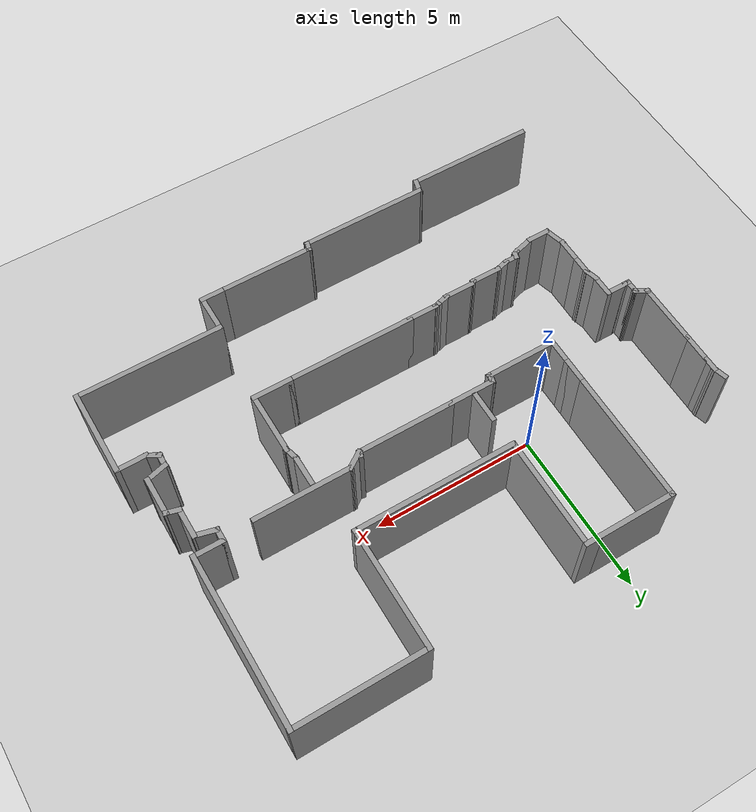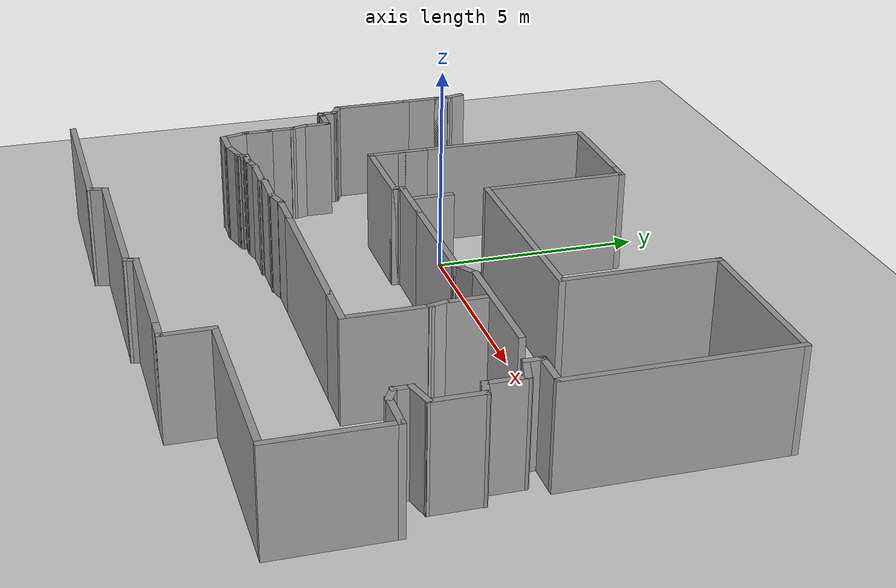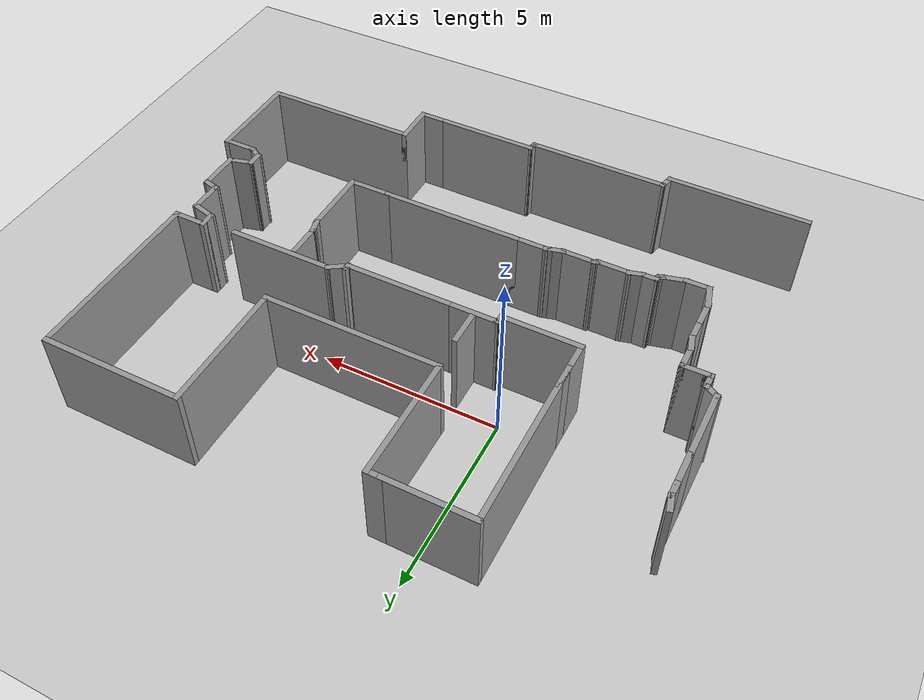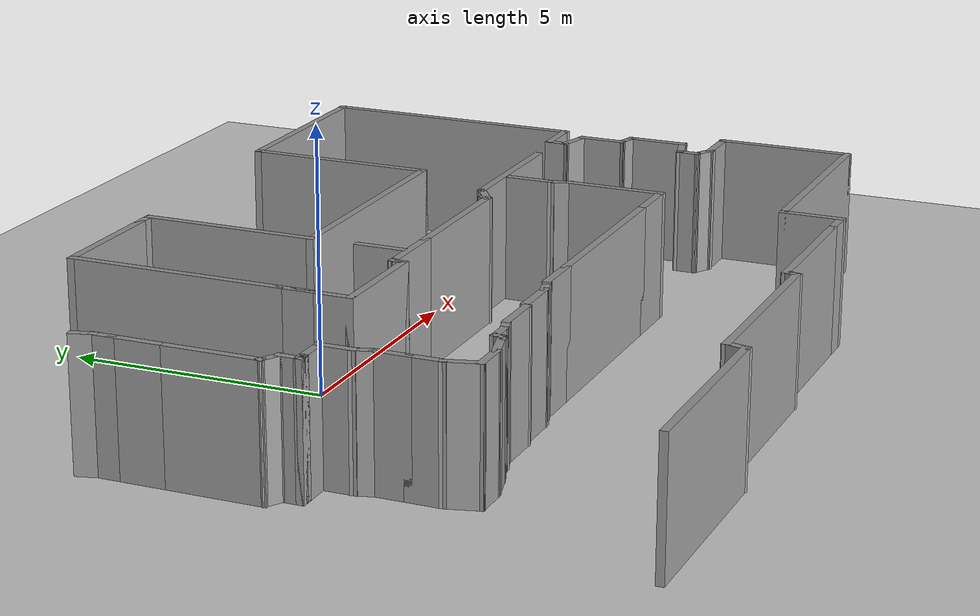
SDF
<sdf version="1.7">
 <world name="default">
  <model name="ground_plane">
   <static>1</static>
   <link name="link">
    <collision name="collision">
     <geometry><plane><normal>0 0 1</normal><size>100 100</size></plane></geometry>
     <surface>
      <contact><collide_bitmask>65535</collide_bitmask></contact>
      <friction><ode><mu>100</mu><mu2>50</mu2></ode></friction>
     </surface>
    </collision>
    <visual name="visual">
     <cast_shadows>0</cast_shadows>
     <geometry><plane><normal>0 0 1</normal><size>100 100</size></plane></geometry>
     <material>
      <script><uri>file://media/materials/scripts/gazebo.material</uri><name>Gazebo/Grey</name></script>
     </material>
    </visual>
   </link>
  </model>
  <model name="robovisor_env">
   <pose>-13 -0.201839 0 0 0 3.14</pose>
   <link name="Wall_0">
    <collision name="Wall_0_Collision">
     <geometry><box><size>1 0.15 2.5</size></box></geometry>
     <pose>0 0 1.25 0 -0 0</pose>
    </collision>
    <visual name="Wall_0_Visual">
     <pose>0 0 1.25 0 -0 0</pose>
     <geometry><box><size>1 0.15 2.5</size></box></geometry>
     <material>
      <script><uri>file://media/materials/scripts/gazebo.material</uri><name>Gazebo/Grey</name></script>
      <ambient>1 1 1 1</ambient>
     </material>
     <meta><layer>0</layer></meta>
    </visual>
    <pose>-14.2767 0.369884 0 0 -0 1.5708</pose>
   </link>
   <link name="Wall_101">
    <collision name="Wall_101_Collision">
     <geometry><box><size>2 0.15 2.5</size></box></geometry>
     <pose>0 0 1.25 0 -0 0</pose>
    </collision>
    <visual name="Wall_101_Visual">
     <pose>0 0 1.25 0 -0 0</pose>
     <geometry><box><size>2 0.15 2.5</size></box></geometry>
     <material>
      <script><uri>file://media/materials/scripts/gazebo.material</uri><name>Gazebo/Grey</name></script>
      <ambient>1 1 1 1</ambient>
     </material>
     <meta><layer>0</layer></meta>
    </visual>
    <pose>-8.20957 0.222487 0 0 -0 -1.5708</pose>
   </link>
   <link name="Wall_103">
    <collision name="Wall_103_Collision">
     <geometry><box><size>1 0.15 2.5</size></box></geometry>
     <pose>0 0 1.25 0 -0 0</pose>
    </collision>
    <visual name="Wall_103_Visual">
     <pose>0 0 1.25 0 -0 0</pose>
     <geometry><box><size>1 0.15 2.5</size></box></geometry>
     <material>
      <script><uri>file://media/materials/scripts/gazebo.material</uri><name>Gazebo/Grey</name></script>
      <ambient>1 1 1 1</ambient>
     </material>
     <meta><layer>0</layer></meta>
    </visual>
    <pose>-8.20957 -1.12751 0 0 -0 -1.5708</pose>
   </link>
   <link name="Wall_104">
    <collision name="Wall_104_Collision">
     <geometry><box><size>0.5 0.15 2.5</size></box></geometry>
     <pose>0 0 1.25 0 -0 0</pose>
    </collision>
    <visual name="Wall_104_Visual">
     <pose>0 0 1.25 0 -0 0</pose>
     <geometry><box><size>0.5 0.15 2.5</size></box></geometry>
     <material>
      <script><uri>file://media/materials/scripts/gazebo.material</uri><name>Gazebo/Grey</name></script>
      <ambient>1 1 1 1</ambient>
     </material>
     <meta><layer>0</layer></meta>
    </visual>
    <pose>-8.20957 -1.72751 0 0 -0 -1.5708</pose>
   </link>
   <link name="Wall_105">
    <collision name="Wall_105_Collision">
     <geometry><box><size>0.5 0.15 2.5</size></box></geometry>
     <pose>0 0 1.25 0 -0 0</pose>
    </collision>
    <visual name="Wall_105_Visual">
     <pose>0 0 1.25 0 -0 0</pose>
     <geometry><box><size>0.5 0.15 2.5</size></box></geometry>
     <material>
      <script><uri>file://media/materials/scripts/gazebo.material</uri><name>Gazebo/Grey</name></script>
      <ambient>1 1 1 1</ambient>
     </material>
     <meta><layer>0</layer></meta>
    </visual>
    <pose>-8.16427 -2.07155 0 0 -0 -1.309</pose>
   </link>
   <link name="Wall_11">
    <collision name="Wall_11_Collision">
     <geometry><box><size>4.25 0.15 2.5</size></box></geometry>
     <pose>0 0 1.25 0 -0 0</pose>
    </collision>
    <visual name="Wall_11_Visual">
     <pose>0 0 1.25 0 -0 0</pose>
     <geometry><box><size>4.25 0.15 2.5</size></box></geometry>
     <material>
      <script><uri>file://media/materials/scripts/gazebo.material</uri><name>Gazebo/Grey</name></script>
      <ambient>1 1 1 1</ambient>
     </material>
     <meta><layer>0</layer></meta>
    </visual>
    <pose>-11.5267 -2.27908 0 0 -0 -1.5708</pose>
   </link>
   <link name="Wall_12">
    <collision name="Wall_12_Collision">
     <geometry><box><size>2.5 0.15 2.5</size></box></geometry>
     <pose>0 0 1.25 0 -0 0</pose>
    </collision>
    <visual name="Wall_12_Visual">
     <pose>0 0 1.25 0 -0 0</pose>
     <geometry><box><size>2.5 0.15 2.5</size></box></geometry>
     <material>
      <script><uri>file://media/materials/scripts/gazebo.material</uri><name>Gazebo/Grey</name></script>
      <ambient>1 1 1 1</ambient>
     </material>
     <meta><layer>0</layer></meta>
    </visual>
    <pose>-12.7017 -4.32909 0 0 -0 3.14159</pose>
   </link>
   <link name="Wall_13">
    <collision name="Wall_13_Collision">
     <geometry><box><size>0.5 0.15 2.5</size></box></geometry>
     <pose>0 0 1.25 0 -0 0</pose>
    </collision>
    <visual name="Wall_13_Visual">
     <pose>0 0 1.25 0 -0 0</pose>
     <geometry><box><size>0.5 0.15 2.5</size></box></geometry>
     <material>
      <script><uri>file://media/materials/scripts/gazebo.material</uri><name>Gazebo/Grey</name></script>
      <ambient>1 1 1 1</ambient>
     </material>
     <meta><layer>0</layer></meta>
    </visual>
    <pose>-14.0517 -4.32909 0 0 -0 3.14159</pose>
   </link>
   <link name="Wall_14">
    <collision name="Wall_14_Collision">
     <geometry><box><size>3.5 0.15 2.5</size></box></geometry>
     <pose>0 0 1.25 0 -0 0</pose>
    </collision>
    <visual name="Wall_14_Visual">
     <pose>0 0 1.25 0 -0 0</pose>
     <geometry><box><size>3.5 0.15 2.5</size></box></geometry>
     <material>
      <script><uri>file://media/materials/scripts/gazebo.material</uri><name>Gazebo/Grey</name></script>
      <ambient>1 1 1 1</ambient>
     </material>
     <meta><layer>0</layer></meta>
    </visual>
    <pose>-14.2267 -2.65408 0 0 -0 1.5708</pose>
   </link>
   <link name="Wall_15">
    <collision name="Wall_15_Collision">
     <geometry><box><size>5 0.15 2.5</size></box></geometry>
     <pose>0 0 1.25 0 -0 0</pose>
    </collision>
    <visual name="Wall_15_Visual">
     <pose>0 0 1.25 0 -0 0</pose>
     <geometry><box><size>5 0.15 2.5</size></box></geometry>
     <material>
      <script><uri>file://media/materials/scripts/gazebo.material</uri><name>Gazebo/Grey</name></script>
      <ambient>1 1 1 1</ambient>
     </material>
     <meta><layer>0</layer></meta>
    </visual>
    <pose>-16.6517 -0.979085 0 0 -0 3.14159</pose>
   </link>
   <link name="Wall_16">
    <collision name="Wall_16_Collision">
     <geometry><box><size>3.75 0.15 2.5</size></box></geometry>
     <pose>0 0 1.25 0 -0 0</pose>
    </collision>
    <visual name="Wall_16_Visual">
     <pose>0 0 1.25 0 -0 0</pose>
     <geometry><box><size>3.75 0.15 2.5</size></box></geometry>
     <material>
      <script><uri>file://media/materials/scripts/gazebo.material</uri><name>Gazebo/Grey</name></script>
      <ambient>1 1 1 1</ambient>
     </material>
     <meta><layer>0</layer></meta>
    </visual>
    <pose>-19.0767 -2.77908 0 0 -0 -1.5708</pose>
   </link>
   <link name="Wall_17">
    <collision name="Wall_17_Collision">
     <geometry><box><size>4 0.15 2.5</size></box></geometry>
     <pose>0 0 1.25 0 -0 0</pose>
    </collision>
    <visual name="Wall_17_Visual">
     <pose>0 0 1.25 0 -0 0</pose>
     <geometry><box><size>4 0.15 2.5</size></box></geometry>
     <material>
      <script><uri>file://media/materials/scripts/gazebo.material</uri><name>Gazebo/Grey</name></script>
      <ambient>1 1 1 1</ambient>
     </material>
     <meta><layer>0</layer></meta>
    </visual>
    <pose>-21.0017 -4.57909 0 0 -0 3.14159</pose>
   </link>
   <link name="Wall_2">
    <collision name="Wall_2_Collision">
     <geometry><box><size>1.5 0.15 2.5</size></box></geometry>
     <pose>0 0 1.25 0 -0 0</pose>
    </collision>
    <visual name="Wall_2_Visual">
     <pose>0 0 1.25 0 -0 0</pose>
     <geometry><box><size>1.5 0.15 2.5</size></box></geometry>
     <material>
      <script><uri>file://media/materials/scripts/gazebo.material</uri><name>Gazebo/Grey</name></script>
      <ambient>1 1 1 1</ambient>
     </material>
     <meta><layer>0</layer></meta>
    </visual>
    <pose>-14.3276 0.924322 0 0 -0 0</pose>
   </link>
   <link name="Wall_20">
    <collision name="Wall_20_Collision">
     <geometry><box><size>5.25 0.15 2.5</size></box></geometry>
     <pose>0 0 1.25 0 -0 0</pose>
    </collision>
    <visual name="Wall_20_Visual">
     <pose>0 0 1.25 0 -0 0</pose>
     <geometry><box><size>5.25 0.15 2.5</size></box></geometry>
     <material>
      <script><uri>file://media/materials/scripts/gazebo.material</uri><name>Gazebo/Grey</name></script>
      <ambient>1 1 1 1</ambient>
     </material>
     <meta><layer>0</layer></meta>
    </visual>
    <pose>-22.9267 -2.02908 0 0 -0 1.5708</pose>
   </link>
   <link name="Wall_21">
    <collision name="Wall_21_Collision">
     <geometry><box><size>1 0.15 2.5</size></box></geometry>
     <pose>0 0 1.25 0 -0 0</pose>
    </collision>
    <visual name="Wall_21_Visual">
     <pose>0 0 1.25 0 -0 0</pose>
     <geometry><box><size>1 0.15 2.5</size></box></geometry>
     <material>
      <script><uri>file://media/materials/scripts/gazebo.material</uri><name>Gazebo/Grey</name></script>
      <ambient>1 1 1 1</ambient>
     </material>
     <meta><layer>0</layer></meta>
    </visual>
    <pose>-22.5017 0.520915 0 0 -0 0</pose>
   </link>
   <link name="Wall_24">
    <collision name="Wall_24_Collision">
     <geometry><box><size>3 0.15 2.5</size></box></geometry>
     <pose>0 0 1.25 0 -0 0</pose>
    </collision>
    <visual name="Wall_24_Visual">
     <pose>0 0 1.25 0 -0 0</pose>
     <geometry><box><size>3 0.15 2.5</size></box></geometry>
     <material>
      <script><uri>file://media/materials/scripts/gazebo.material</uri><name>Gazebo/Grey</name></script>
      <ambient>1 1 1 1</ambient>
     </material>
     <meta><layer>0</layer></meta>
    </visual>
    <pose>-16.4276 0.924322 0 0 -0 3.14159</pose>
   </link>
   <link name="Wall_25">
    <collision name="Wall_25_Collision">
     <geometry><box><size>0.15 0.15 2.5</size></box></geometry>
     <pose>0 0 1.25 0 -0 0</pose>
    </collision>
    <visual name="Wall_25_Visual">
     <pose>0 0 1.25 0 -0 0</pose>
     <geometry><box><size>0.15 0.15 2.5</size></box></geometry>
     <material>
      <script><uri>file://media/materials/scripts/gazebo.material</uri><name>Gazebo/Grey</name></script>
      <ambient>1 1 1 1</ambient>
     </material>
     <meta><layer>0</layer></meta>
    </visual>
    <pose>-17.8526 0.924322 0 0 -0 0</pose>
   </link>
   <link name="Wall_26">
    <collision name="Wall_26_Collision">
     <geometry><box><size>0.25 0.15 2.5</size></box></geometry>
     <pose>0 0 1.25 0 -0 0</pose>
    </collision>
    <visual name="Wall_26_Visual">
     <pose>0 0 1.25 0 -0 0</pose>
     <geometry><box><size>0.25 0.15 2.5</size></box></geometry>
     <material>
      <script><uri>file://media/materials/scripts/gazebo.material</uri><name>Gazebo/Grey</name></script>
      <ambient>1 1 1 1</ambient>
     </material>
     <meta><layer>0</layer></meta>
    </visual>
    <pose>-17.8655 0.876026 0 0 -0 -1.8326</pose>
   </link>
   <link name="Wall_28">
    <collision name="Wall_28_Collision">
     <geometry><box><size>3 0.15 2.5</size></box></geometry>
     <pose>0 0 1.25 0 -0 0</pose>
    </collision>
    <visual name="Wall_28_Visual">
     <pose>0 0 1.25 0 -0 0</pose>
     <geometry><box><size>3 0.15 2.5</size></box></geometry>
     <material>
      <script><uri>file://media/materials/scripts/gazebo.material</uri><name>Gazebo/Grey</name></script>
      <ambient>1 1 1 1</ambient>
     </material>
     <meta><layer>0</layer></meta>
    </visual>
    <pose>-19.7138 0.63442 0 0 -0 0</pose>
   </link>
   <link name="Wall_29">
    <collision name="Wall_29_Collision">
     <geometry><box><size>0.673777 0.15 2.5</size></box></geometry>
     <pose>0 0 1.25 0 -0 0</pose>
    </collision>
    <visual name="Wall_29_Visual">
     <pose>0 0 1.25 0 -0 0</pose>
     <geometry><box><size>0.673777 0.15 2.5</size></box></geometry>
     <material>
      <script><uri>file://media/materials/scripts/gazebo.material</uri><name>Gazebo/Grey</name></script>
      <ambient>1 1 1 1</ambient>
     </material>
     <meta><layer>0</layer></meta>
    </visual>
    <pose>-18.0707 0.779371 0 0 -0 0.586542</pose>
   </link>
   <link name="Wall_3">
    <collision name="Wall_3_Collision">
     <geometry><box><size>0.25 0.15 2.5</size></box></geometry>
     <pose>0 0 1.25 0 -0 0</pose>
    </collision>
    <visual name="Wall_3_Visual">
     <pose>0 0 1.25 0 -0 0</pose>
     <geometry><box><size>0.25 0.15 2.5</size></box></geometry>
     <material>
      <script><uri>file://media/materials/scripts/gazebo.material</uri><name>Gazebo/Grey</name></script>
      <ambient>1 1 1 1</ambient>
     </material>
     <meta><layer>0</layer></meta>
    </visual>
    <pose>-13.6396 0.972619 0 0 -0 1.309</pose>
   </link>
   <link name="Wall_31">
    <collision name="Wall_31_Collision">
     <geometry><box><size>0.5 0.15 2.5</size></box></geometry>
     <pose>0 0 1.25 0 -0 0</pose>
    </collision>
    <visual name="Wall_31_Visual">
     <pose>0 0 1.25 0 -0 0</pose>
     <geometry><box><size>0.5 0.15 2.5</size></box></geometry>
     <material>
      <script><uri>file://media/materials/scripts/gazebo.material</uri><name>Gazebo/Grey</name></script>
      <ambient>1 1 1 1</ambient>
     </material>
     <meta><layer>0</layer></meta>
    </visual>
    <pose>-22.0767 0.695915 0 0 -0 1.5708</pose>
   </link>
   <link name="Wall_32">
    <collision name="Wall_32_Collision">
     <geometry><box><size>0.75 0.15 2.5</size></box></geometry>
     <pose>0 0 1.25 0 -0 0</pose>
    </collision>
    <visual name="Wall_32_Visual">
     <pose>0 0 1.25 0 -0 0</pose>
     <geometry><box><size>0.75 0.15 2.5</size></box></geometry>
     <material>
      <script><uri>file://media/materials/scripts/gazebo.material</uri><name>Gazebo/Grey</name></script>
      <ambient>1 1 1 1</ambient>
     </material>
     <meta><layer>0</layer></meta>
    </visual>
    <pose>-22.3665 0.948561 0 0 -0 2.87979</pose>
   </link>
   <link name="Wall_33">
    <collision name="Wall_33_Collision">
     <geometry><box><size>1 0.15 2.5</size></box></geometry>
     <pose>0 0 1.25 0 -0 0</pose>
    </collision>
    <visual name="Wall_33_Visual">
     <pose>0 0 1.25 0 -0 0</pose>
     <geometry><box><size>1 0.15 2.5</size></box></geometry>
     <material>
      <script><uri>file://media/materials/scripts/gazebo.material</uri><name>Gazebo/Grey</name></script>
      <ambient>1 1 1 1</ambient>
     </material>
     <meta><layer>0</layer></meta>
    </visual>
    <pose>-22.6563 1.45121 0 0 -0 1.5708</pose>
   </link>
   <link name="Wall_34">
    <collision name="Wall_34_Collision">
     <geometry><box><size>0.5 0.15 2.5</size></box></geometry>
     <pose>0 0 1.25 0 -0 0</pose>
    </collision>
    <visual name="Wall_34_Visual">
     <pose>0 0 1.25 0 -0 0</pose>
     <geometry><box><size>0.5 0.15 2.5</size></box></geometry>
     <material>
      <script><uri>file://media/materials/scripts/gazebo.material</uri><name>Gazebo/Grey</name></script>
      <ambient>1 1 1 1</ambient>
     </material>
     <meta><layer>0</layer></meta>
    </visual>
    <pose>-22.8253 1.9215 0 0 -0 2.87979</pose>
   </link>
   <link name="Wall_35">
    <collision name="Wall_35_Collision">
     <geometry><box><size>1.25 0.15 2.5</size></box></geometry>
     <pose>0 0 1.25 0 -0 0</pose>
    </collision>
    <visual name="Wall_35_Visual">
     <pose>0 0 1.25 0 -0 0</pose>
     <geometry><box><size>1.25 0.15 2.5</size></box></geometry>
     <material>
      <script><uri>file://media/materials/scripts/gazebo.material</uri><name>Gazebo/Grey</name></script>
      <ambient>1 1 1 1</ambient>
     </material>
     <meta><layer>0</layer></meta>
    </visual>
    <pose>-22.9943 2.51679 0 0 -0 1.5708</pose>
   </link>
   <link name="Wall_38">
    <collision name="Wall_38_Collision">
     <geometry><box><size>0.75 0.15 2.5</size></box></geometry>
     <pose>0 0 1.25 0 -0 0</pose>
    </collision>
    <visual name="Wall_38_Visual">
     <pose>0 0 1.25 0 -0 0</pose>
     <geometry><box><size>0.75 0.15 2.5</size></box></geometry>
     <material>
      <script><uri>file://media/materials/scripts/gazebo.material</uri><name>Gazebo/Grey</name></script>
      <ambient>1 1 1 1</ambient>
     </material>
     <meta><layer>0</layer></meta>
    </visual>
    <pose>-22.7045 3.14444 0 0 -0 0.261799</pose>
   </link>
   <link name="Wall_39">
    <collision name="Wall_39_Collision">
     <geometry><box><size>0.5 0.15 2.5</size></box></geometry>
     <pose>0 0 1.25 0 -0 0</pose>
    </collision>
    <visual name="Wall_39_Visual">
     <pose>0 0 1.25 0 -0 0</pose>
     <geometry><box><size>0.5 0.15 2.5</size></box></geometry>
     <material>
      <script><uri>file://media/materials/scripts/gazebo.material</uri><name>Gazebo/Grey</name></script>
      <ambient>1 1 1 1</ambient>
     </material>
     <meta><layer>0</layer></meta>
    </visual>
    <pose>-22.4148 3.39708 0 0 -0 1.5708</pose>
   </link>
   <link name="Wall_4">
    <collision name="Wall_4_Collision">
     <geometry><box><size>0.25 0.15 2.5</size></box></geometry>
     <pose>0 0 1.25 0 -0 0</pose>
    </collision>
    <visual name="Wall_4_Visual">
     <pose>0 0 1.25 0 -0 0</pose>
     <geometry><box><size>0.25 0.15 2.5</size></box></geometry>
     <material>
      <script><uri>file://media/materials/scripts/gazebo.material</uri><name>Gazebo/Grey</name></script>
      <ambient>1 1 1 1</ambient>
     </material>
     <meta><layer>0</layer></meta>
    </visual>
    <pose>-13.6396 0.972619 0 0 -0 -1.8326</pose>
   </link>
   <link name="Wall_40">
    <collision name="Wall_40_Collision">
     <geometry><box><size>0.5 0.15 2.5</size></box></geometry>
     <pose>0 0 1.25 0 -0 0</pose>
    </collision>
    <visual name="Wall_40_Visual">
     <pose>0 0 1.25 0 -0 0</pose>
     <geometry><box><size>0.5 0.15 2.5</size></box></geometry>
     <material>
      <script><uri>file://media/materials/scripts/gazebo.material</uri><name>Gazebo/Grey</name></script>
      <ambient>1 1 1 1</ambient>
     </material>
     <meta><layer>0</layer></meta>
    </visual>
    <pose>-22.5663 3.65958 0 0 -0 2.61799</pose>
   </link>
   <link name="Wall_41">
    <collision name="Wall_41_Collision">
     <geometry><box><size>1 0.15 2.5</size></box></geometry>
     <pose>0 0 1.25 0 -0 0</pose>
    </collision>
    <visual name="Wall_41_Visual">
     <pose>0 0 1.25 0 -0 0</pose>
     <geometry><box><size>1 0.15 2.5</size></box></geometry>
     <material>
      <script><uri>file://media/materials/scripts/gazebo.material</uri><name>Gazebo/Grey</name></script>
      <ambient>1 1 1 1</ambient>
     </material>
     <meta><layer>0</layer></meta>
    </visual>
    <pose>-23.1429 3.74709 0 0 -0 3.14159</pose>
   </link>
   <link name="Wall_43">
    <collision name="Wall_43_Collision">
     <geometry><box><size>2.75 0.15 2.5</size></box></geometry>
     <pose>0 0 1.25 0 -0 0</pose>
    </collision>
    <visual name="Wall_43_Visual">
     <pose>0 0 1.25 0 -0 0</pose>
     <geometry><box><size>2.75 0.15 2.5</size></box></geometry>
     <material>
      <script><uri>file://media/materials/scripts/gazebo.material</uri><name>Gazebo/Grey</name></script>
      <ambient>1 1 1 1</ambient>
     </material>
     <meta><layer>0</layer></meta>
    </visual>
    <pose>-23.5679 5.04708 0 0 -0 1.5708</pose>
   </link>
   <link name="Wall_44">
    <collision name="Wall_44_Collision">
     <geometry><box><size>4.5 0.15 2.5</size></box></geometry>
     <pose>0 0 1.25 0 -0 0</pose>
    </collision>
    <visual name="Wall_44_Visual">
     <pose>0 0 1.25 0 -0 0</pose>
     <geometry><box><size>4.5 0.15 2.5</size></box></geometry>
     <material>
      <script><uri>file://media/materials/scripts/gazebo.material</uri><name>Gazebo/Grey</name></script>
      <ambient>1 1 1 1</ambient>
     </material>
     <meta><layer>0</layer></meta>
    </visual>
    <pose>-21.3929 6.34708 0 0 -0 0</pose>
   </link>
   <link name="Wall_46">
    <collision name="Wall_46_Collision">
     <geometry><box><size>1.25 0.15 2.5</size></box></geometry>
     <pose>0 0 1.25 0 -0 0</pose>
    </collision>
    <visual name="Wall_46_Visual">
     <pose>0 0 1.25 0 -0 0</pose>
     <geometry><box><size>1.25 0.15 2.5</size></box></geometry>
     <material>
      <script><uri>file://media/materials/scripts/gazebo.material</uri><name>Gazebo/Grey</name></script>
      <ambient>1 1 1 1</ambient>
     </material>
     <meta><layer>0</layer></meta>
    </visual>
    <pose>-19.2179 6.89708 0 0 -0 1.5708</pose>
   </link>
   <link name="Wall_47">
    <collision name="Wall_47_Collision">
     <geometry><box><size>0.75 0.15 2.5</size></box></geometry>
     <pose>0 0 1.25 0 -0 0</pose>
    </collision>
    <visual name="Wall_47_Visual">
     <pose>0 0 1.25 0 -0 0</pose>
     <geometry><box><size>0.75 0.15 2.5</size></box></geometry>
     <material>
      <script><uri>file://media/materials/scripts/gazebo.material</uri><name>Gazebo/Grey</name></script>
      <ambient>1 1 1 1</ambient>
     </material>
     <meta><layer>0</layer></meta>
    </visual>
    <pose>-18.9179 7.44708 0 0 -0 0</pose>
   </link>
   <link name="Wall_49">
    <collision name="Wall_49_Collision">
     <geometry><box><size>3 0.15 2.5</size></box></geometry>
     <pose>0 0 1.25 0 -0 0</pose>
    </collision>
    <visual name="Wall_49_Visual">
     <pose>0 0 1.25 0 -0 0</pose>
     <geometry><box><size>3 0.15 2.5</size></box></geometry>
     <material>
      <script><uri>file://media/materials/scripts/gazebo.material</uri><name>Gazebo/Grey</name></script>
      <ambient>1 1 1 1</ambient>
     </material>
     <meta><layer>0</layer></meta>
    </visual>
    <pose>-17.1929 7.44708 0 0 -0 0</pose>
   </link>
   <link name="Wall_50">
    <collision name="Wall_50_Collision">
     <geometry><box><size>0.25 0.15 2.5</size></box></geometry>
     <pose>0 0 1.25 0 -0 0</pose>
    </collision>
    <visual name="Wall_50_Visual">
     <pose>0 0 1.25 0 -0 0</pose>
     <geometry><box><size>0.25 0.15 2.5</size></box></geometry>
     <material>
      <script><uri>file://media/materials/scripts/gazebo.material</uri><name>Gazebo/Grey</name></script>
      <ambient>1 1 1 1</ambient>
     </material>
     <meta><layer>0</layer></meta>
    </visual>
    <pose>-15.7549 7.49538 0 0 -0 1.309</pose>
   </link>
   <link name="Wall_51">
    <collision name="Wall_51_Collision">
     <geometry><box><size>0.25 0.15 2.5</size></box></geometry>
     <pose>0 0 1.25 0 -0 0</pose>
    </collision>
    <visual name="Wall_51_Visual">
     <pose>0 0 1.25 0 -0 0</pose>
     <geometry><box><size>0.25 0.15 2.5</size></box></geometry>
     <material>
      <script><uri>file://media/materials/scripts/gazebo.material</uri><name>Gazebo/Grey</name></script>
      <ambient>1 1 1 1</ambient>
     </material>
     <meta><layer>0</layer></meta>
    </visual>
    <pose>-15.7291 7.59197 0 0 -0 1.309</pose>
   </link>
   <link name="Wall_52">
    <collision name="Wall_52_Collision">
     <geometry><box><size>4 0.15 2.5</size></box></geometry>
     <pose>0 0 1.25 0 -0 0</pose>
    </collision>
    <visual name="Wall_52_Visual">
     <pose>0 0 1.25 0 -0 0</pose>
     <geometry><box><size>4 0.15 2.5</size></box></geometry>
     <material>
      <script><uri>file://media/materials/scripts/gazebo.material</uri><name>Gazebo/Grey</name></script>
      <ambient>1 1 1 1</ambient>
     </material>
     <meta><layer>0</layer></meta>
    </visual>
    <pose>-13.7911 7.64027 0 0 -0 0</pose>
   </link>
   <link name="Wall_53">
    <collision name="Wall_53_Collision">
     <geometry><box><size>0.5 0.15 2.5</size></box></geometry>
     <pose>0 0 1.25 0 -0 0</pose>
    </collision>
    <visual name="Wall_53_Visual">
     <pose>0 0 1.25 0 -0 0</pose>
     <geometry><box><size>0.5 0.15 2.5</size></box></geometry>
     <material>
      <script><uri>file://media/materials/scripts/gazebo.material</uri><name>Gazebo/Grey</name></script>
      <ambient>1 1 1 1</ambient>
     </material>
     <meta><layer>0</layer></meta>
    </visual>
    <pose>-11.8208 7.80931 0 0 -0 1.309</pose>
   </link>
   <link name="Wall_54">
    <collision name="Wall_54_Collision">
     <geometry><box><size>4 0.15 2.5</size></box></geometry>
     <pose>0 0 1.25 0 -0 0</pose>
    </collision>
    <visual name="Wall_54_Visual">
     <pose>0 0 1.25 0 -0 0</pose>
     <geometry><box><size>4 0.15 2.5</size></box></geometry>
     <material>
      <script><uri>file://media/materials/scripts/gazebo.material</uri><name>Gazebo/Grey</name></script>
      <ambient>1 1 1 1</ambient>
     </material>
     <meta><layer>0</layer></meta>
    </visual>
    <pose>-9.85053 7.97834 0 0 -0 0</pose>
   </link>
   <link name="Wall_6">
    <collision name="Wall_6_Collision">
     <geometry><box><size>0.25 0.15 2.5</size></box></geometry>
     <pose>0 0 1.25 0 -0 0</pose>
    </collision>
    <visual name="Wall_6_Visual">
     <pose>0 0 1.25 0 -0 0</pose>
     <geometry><box><size>0.25 0.15 2.5</size></box></geometry>
     <material>
      <script><uri>file://media/materials/scripts/gazebo.material</uri><name>Gazebo/Grey</name></script>
      <ambient>1 1 1 1</ambient>
     </material>
     <meta><layer>0</layer></meta>
    </visual>
    <pose>-13.6267 1.07092 0 0 -0 1.5708</pose>
   </link>
   <link name="Wall_62">
    <collision name="Wall_62_Collision">
     <geometry><box><size>1 0.15 2.5</size></box></geometry>
     <pose>0 0 1.25 0 -0 0</pose>
    </collision>
    <visual name="Wall_62_Visual">
     <pose>0 0 1.25 0 -0 0</pose>
     <geometry><box><size>1 0.15 2.5</size></box></geometry>
     <material>
      <script><uri>file://media/materials/scripts/gazebo.material</uri><name>Gazebo/Grey</name></script>
      <ambient>1 1 1 1</ambient>
     </material>
     <meta><layer>0</layer></meta>
    </visual>
    <pose>-19.3694 1.2181 0 0 -0 1.5708</pose>
   </link>
   <link name="Wall_63">
    <collision name="Wall_63_Collision">
     <geometry><box><size>0.5 0.15 2.5</size></box></geometry>
     <pose>0 0 1.25 0 -0 0</pose>
    </collision>
    <visual name="Wall_63_Visual">
     <pose>0 0 1.25 0 -0 0</pose>
     <geometry><box><size>0.5 0.15 2.5</size></box></geometry>
     <material>
      <script><uri>file://media/materials/scripts/gazebo.material</uri><name>Gazebo/Grey</name></script>
      <ambient>1 1 1 1</ambient>
     </material>
     <meta><layer>0</layer></meta>
    </visual>
    <pose>-19.4146 1.81214 0 0 -0 1.8326</pose>
   </link>
   <link name="Wall_64">
    <collision name="Wall_64_Collision">
     <geometry><box><size>2 0.15 2.5</size></box></geometry>
     <pose>0 0 1.25 0 -0 0</pose>
    </collision>
    <visual name="Wall_64_Visual">
     <pose>0 0 1.25 0 -0 0</pose>
     <geometry><box><size>2 0.15 2.5</size></box></geometry>
     <material>
      <script><uri>file://media/materials/scripts/gazebo.material</uri><name>Gazebo/Grey</name></script>
      <ambient>1 1 1 1</ambient>
     </material>
     <meta><layer>0</layer></meta>
    </visual>
    <pose>-19.4599 2.90618 0 0 -0 1.5708</pose>
   </link>
   <link name="Wall_65">
    <collision name="Wall_65_Collision">
     <geometry><box><size>1.25 0.15 2.5</size></box></geometry>
     <pose>0 0 1.25 0 -0 0</pose>
    </collision>
    <visual name="Wall_65_Visual">
     <pose>0 0 1.25 0 -0 0</pose>
     <geometry><box><size>1.25 0.15 2.5</size></box></geometry>
     <material>
      <script><uri>file://media/materials/scripts/gazebo.material</uri><name>Gazebo/Grey</name></script>
      <ambient>1 1 1 1</ambient>
     </material>
     <meta><layer>0</layer></meta>
    </visual>
    <pose>-18.9099 3.83118 0 0 -0 0</pose>
   </link>
   <link name="Wall_66">
    <collision name="Wall_66_Collision">
     <geometry><box><size>4 0.15 2.5</size></box></geometry>
     <pose>0 0 1.25 0 -0 0</pose>
    </collision>
    <visual name="Wall_66_Visual">
     <pose>0 0 1.25 0 -0 0</pose>
     <geometry><box><size>4 0.15 2.5</size></box></geometry>
     <material>
      <script><uri>file://media/materials/scripts/gazebo.material</uri><name>Gazebo/Grey</name></script>
      <ambient>1 1 1 1</ambient>
     </material>
     <meta><layer>0</layer></meta>
    </visual>
    <pose>-16.4349 3.83118 0 0 -0 0</pose>
   </link>
   <link name="Wall_67">
    <collision name="Wall_67_Collision">
     <geometry><box><size>1 0.15 2.5</size></box></geometry>
     <pose>0 0 1.25 0 -0 0</pose>
    </collision>
    <visual name="Wall_67_Visual">
     <pose>0 0 1.25 0 -0 0</pose>
     <geometry><box><size>1 0.15 2.5</size></box></geometry>
     <material>
      <script><uri>file://media/materials/scripts/gazebo.material</uri><name>Gazebo/Grey</name></script>
      <ambient>1 1 1 1</ambient>
     </material>
     <meta><layer>0</layer></meta>
    </visual>
    <pose>-14.0849 3.83118 0 0 -0 0</pose>
   </link>
   <link name="Wall_68">
    <collision name="Wall_68_Collision">
     <geometry><box><size>0.25 0.15 2.5</size></box></geometry>
     <pose>0 0 1.25 0 -0 0</pose>
    </collision>
    <visual name="Wall_68_Visual">
     <pose>0 0 1.25 0 -0 0</pose>
     <geometry><box><size>0.25 0.15 2.5</size></box></geometry>
     <material>
      <script><uri>file://media/materials/scripts/gazebo.material</uri><name>Gazebo/Grey</name></script>
      <ambient>1 1 1 1</ambient>
     </material>
     <meta><layer>0</layer></meta>
    </visual>
    <pose>-13.6116 3.84412 0 0 -0 0.261799</pose>
   </link>
   <link name="Wall_69">
    <collision name="Wall_69_Collision">
     <geometry><box><size>0.5 0.15 2.5</size></box></geometry>
     <pose>0 0 1.25 0 -0 0</pose>
    </collision>
    <visual name="Wall_69_Visual">
     <pose>0 0 1.25 0 -0 0</pose>
     <geometry><box><size>0.5 0.15 2.5</size></box></geometry>
     <material>
      <script><uri>file://media/materials/scripts/gazebo.material</uri><name>Gazebo/Grey</name></script>
      <ambient>1 1 1 1</ambient>
     </material>
     <meta><layer>0</layer></meta>
    </visual>
    <pose>-13.3943 3.90235 0 0 -0 0.261799</pose>
   </link>
   <link name="Wall_7">
    <collision name="Wall_7_Collision">
     <geometry><box><size>2.25 0.15 2.5</size></box></geometry>
     <pose>0 0 1.25 0 -0 0</pose>
    </collision>
    <visual name="Wall_7_Visual">
     <pose>0 0 1.25 0 -0 0</pose>
     <geometry><box><size>2.25 0.15 2.5</size></box></geometry>
     <material>
      <script><uri>file://media/materials/scripts/gazebo.material</uri><name>Gazebo/Grey</name></script>
      <ambient>1 1 1 1</ambient>
     </material>
     <meta><layer>0</layer></meta>
    </visual>
    <pose>-12.5767 1.12092 0 0 -0 0</pose>
   </link>
   <link name="Wall_70">
    <collision name="Wall_70_Collision">
     <geometry><box><size>1 0.15 2.5</size></box></geometry>
     <pose>0 0 1.25 0 -0 0</pose>
    </collision>
    <visual name="Wall_70_Visual">
     <pose>0 0 1.25 0 -0 0</pose>
     <geometry><box><size>1 0.15 2.5</size></box></geometry>
     <material>
      <script><uri>file://media/materials/scripts/gazebo.material</uri><name>Gazebo/Grey</name></script>
      <ambient>1 1 1 1</ambient>
     </material>
     <meta><layer>0</layer></meta>
    </visual>
    <pose>-12.8003 3.94765 0 0 -0 0</pose>
   </link>
   <link name="Wall_71">
    <collision name="Wall_71_Collision">
     <geometry><box><size>0.25 0.15 2.5</size></box></geometry>
     <pose>0 0 1.25 0 -0 0</pose>
    </collision>
    <visual name="Wall_71_Visual">
     <pose>0 0 1.25 0 -0 0</pose>
     <geometry><box><size>0.25 0.15 2.5</size></box></geometry>
     <material>
      <script><uri>file://media/materials/scripts/gazebo.material</uri><name>Gazebo/Grey</name></script>
      <ambient>1 1 1 1</ambient>
     </material>
     <meta><layer>0</layer></meta>
    </visual>
    <pose>-12.332 3.97265 0 0 -0 0.523599</pose>
   </link>
   <link name="Wall_72">
    <collision name="Wall_72_Collision">
     <geometry><box><size>1 0.15 2.5</size></box></geometry>
     <pose>0 0 1.25 0 -0 0</pose>
    </collision>
    <visual name="Wall_72_Visual">
     <pose>0 0 1.25 0 -0 0</pose>
     <geometry><box><size>1 0.15 2.5</size></box></geometry>
     <material>
      <script><uri>file://media/materials/scripts/gazebo.material</uri><name>Gazebo/Grey</name></script>
      <ambient>1 1 1 1</ambient>
     </material>
     <meta><layer>0</layer></meta>
    </visual>
    <pose>-11.8637 3.99764 0 0 -0 0</pose>
   </link>
   <link name="Wall_73">
    <collision name="Wall_73_Collision">
     <geometry><box><size>0.5 0.15 2.5</size></box></geometry>
     <pose>0 0 1.25 0 -0 0</pose>
    </collision>
    <visual name="Wall_73_Visual">
     <pose>0 0 1.25 0 -0 0</pose>
     <geometry><box><size>0.5 0.15 2.5</size></box></geometry>
     <material>
      <script><uri>file://media/materials/scripts/gazebo.material</uri><name>Gazebo/Grey</name></script>
      <ambient>1 1 1 1</ambient>
     </material>
     <meta><layer>0</layer></meta>
    </visual>
    <pose>-11.2696 4.04294 0 0 -0 0.261799</pose>
   </link>
   <link name="Wall_74">
    <collision name="Wall_74_Collision">
     <geometry><box><size>0.5 0.15 2.5</size></box></geometry>
     <pose>0 0 1.25 0 -0 0</pose>
    </collision>
    <visual name="Wall_74_Visual">
     <pose>0 0 1.25 0 -0 0</pose>
     <geometry><box><size>0.5 0.15 2.5</size></box></geometry>
     <material>
      <script><uri>file://media/materials/scripts/gazebo.material</uri><name>Gazebo/Grey</name></script>
      <ambient>1 1 1 1</ambient>
     </material>
     <meta><layer>0</layer></meta>
    </visual>
    <pose>-10.9256 4.08823 0 0 -0 0</pose>
   </link>
   <link name="Wall_75">
    <collision name="Wall_75_Collision">
     <geometry><box><size>0.25 0.15 2.5</size></box></geometry>
     <pose>0 0 1.25 0 -0 0</pose>
    </collision>
    <visual name="Wall_75_Visual">
     <pose>0 0 1.25 0 -0 0</pose>
     <geometry><box><size>0.25 0.15 2.5</size></box></geometry>
     <material>
      <script><uri>file://media/materials/scripts/gazebo.material</uri><name>Gazebo/Grey</name></script>
      <ambient>1 1 1 1</ambient>
     </material>
     <meta><layer>0</layer></meta>
    </visual>
    <pose>-10.7377 4.13653 0 0 -0 1.309</pose>
   </link>
   <link name="Wall_76">
    <collision name="Wall_76_Collision">
     <geometry><box><size>0.25 0.15 2.5</size></box></geometry>
     <pose>0 0 1.25 0 -0 0</pose>
    </collision>
    <visual name="Wall_76_Visual">
     <pose>0 0 1.25 0 -0 0</pose>
     <geometry><box><size>0.25 0.15 2.5</size></box></geometry>
     <material>
      <script><uri>file://media/materials/scripts/gazebo.material</uri><name>Gazebo/Grey</name></script>
      <ambient>1 1 1 1</ambient>
     </material>
     <meta><layer>0</layer></meta>
    </visual>
    <pose>-10.6814 4.20983 0 0 -0 0.523599</pose>
   </link>
   <link name="Wall_77">
    <collision name="Wall_77_Collision">
     <geometry><box><size>0.75 0.15 2.5</size></box></geometry>
     <pose>0 0 1.25 0 -0 0</pose>
    </collision>
    <visual name="Wall_77_Visual">
     <pose>0 0 1.25 0 -0 0</pose>
     <geometry><box><size>0.75 0.15 2.5</size></box></geometry>
     <material>
      <script><uri>file://media/materials/scripts/gazebo.material</uri><name>Gazebo/Grey</name></script>
      <ambient>1 1 1 1</ambient>
     </material>
     <meta><layer>0</layer></meta>
    </visual>
    <pose>-10.3483 4.31247 0 0 -0 0.261799</pose>
   </link>
   <link name="Wall_78">
    <collision name="Wall_78_Collision">
     <geometry><box><size>0.75 0.15 2.5</size></box></geometry>
     <pose>0 0 1.25 0 -0 0</pose>
    </collision>
    <visual name="Wall_78_Visual">
     <pose>0 0 1.25 0 -0 0</pose>
     <geometry><box><size>0.75 0.15 2.5</size></box></geometry>
     <material>
      <script><uri>file://media/materials/scripts/gazebo.material</uri><name>Gazebo/Grey</name></script>
      <ambient>1 1 1 1</ambient>
     </material>
     <meta><layer>0</layer></meta>
    </visual>
    <pose>-9.75855 4.39012 0 0 -0 0</pose>
   </link>
   <link name="Wall_79">
    <collision name="Wall_79_Collision">
     <geometry><box><size>0.75 0.15 2.5</size></box></geometry>
     <pose>0 0 1.25 0 -0 0</pose>
    </collision>
    <visual name="Wall_79_Visual">
     <pose>0 0 1.25 0 -0 0</pose>
     <geometry><box><size>0.75 0.15 2.5</size></box></geometry>
     <material>
      <script><uri>file://media/materials/scripts/gazebo.material</uri><name>Gazebo/Grey</name></script>
      <ambient>1 1 1 1</ambient>
     </material>
     <meta><layer>0</layer></meta>
    </visual>
    <pose>-9.38091 4.10034 0 0 -0 -1.309</pose>
   </link>
   <link name="Wall_8">
    <collision name="Wall_8_Collision">
     <geometry><box><size>1.5 0.15 2.5</size></box></geometry>
     <pose>0 0 1.25 0 -0 0</pose>
    </collision>
    <visual name="Wall_8_Visual">
     <pose>0 0 1.25 0 -0 0</pose>
     <geometry><box><size>1.5 0.15 2.5</size></box></geometry>
     <material>
      <script><uri>file://media/materials/scripts/gazebo.material</uri><name>Gazebo/Grey</name></script>
      <ambient>1 1 1 1</ambient>
     </material>
     <meta><layer>0</layer></meta>
    </visual>
    <pose>-11.5267 0.445915 0 0 -0 -1.5708</pose>
   </link>
   <link name="Wall_80">
    <collision name="Wall_80_Collision">
     <geometry><box><size>0.75 0.15 2.5</size></box></geometry>
     <pose>0 0 1.25 0 -0 0</pose>
    </collision>
    <visual name="Wall_80_Visual">
     <pose>0 0 1.25 0 -0 0</pose>
     <geometry><box><size>0.75 0.15 2.5</size></box></geometry>
     <material>
      <script><uri>file://media/materials/scripts/gazebo.material</uri><name>Gazebo/Grey</name></script>
      <ambient>1 1 1 1</ambient>
     </material>
     <meta><layer>0</layer></meta>
    </visual>
    <pose>-9.30326 3.51056 0 0 -0 -1.5708</pose>
   </link>
   <link name="Wall_81">
    <collision name="Wall_81_Collision">
     <geometry><box><size>0.75 0.15 2.5</size></box></geometry>
     <pose>0 0 1.25 0 -0 0</pose>
    </collision>
    <visual name="Wall_81_Visual">
     <pose>0 0 1.25 0 -0 0</pose>
     <geometry><box><size>0.75 0.15 2.5</size></box></geometry>
     <material>
      <script><uri>file://media/materials/scripts/gazebo.material</uri><name>Gazebo/Grey</name></script>
      <ambient>1 1 1 1</ambient>
     </material>
     <meta><layer>0</layer></meta>
    </visual>
    <pose>-9.30326 2.91056 0 0 -0 -1.5708</pose>
   </link>
   <link name="Wall_82">
    <collision name="Wall_82_Collision">
     <geometry><box><size>0.5 0.15 2.5</size></box></geometry>
     <pose>0 0 1.25 0 -0 0</pose>
    </collision>
    <visual name="Wall_82_Visual">
     <pose>0 0 1.25 0 -0 0</pose>
     <geometry><box><size>0.5 0.15 2.5</size></box></geometry>
     <material>
      <script><uri>file://media/materials/scripts/gazebo.material</uri><name>Gazebo/Grey</name></script>
      <ambient>1 1 1 1</ambient>
     </material>
     <meta><layer>0</layer></meta>
    </visual>
    <pose>-9.25797 2.44152 0 0 -0 -1.309</pose>
   </link>
   <link name="Wall_83">
    <collision name="Wall_83_Collision">
     <geometry><box><size>0.75 0.15 2.5</size></box></geometry>
     <pose>0 0 1.25 0 -0 0</pose>
    </collision>
    <visual name="Wall_83_Visual">
     <pose>0 0 1.25 0 -0 0</pose>
     <geometry><box><size>0.75 0.15 2.5</size></box></geometry>
     <material>
      <script><uri>file://media/materials/scripts/gazebo.material</uri><name>Gazebo/Grey</name></script>
      <ambient>1 1 1 1</ambient>
     </material>
     <meta><layer>0</layer></meta>
    </visual>
    <pose>-9.21268 1.97249 0 0 -0 -1.5708</pose>
   </link>
   <link name="Wall_84">
    <collision name="Wall_84_Collision">
     <geometry><box><size>0.15 0.15 2.5</size></box></geometry>
     <pose>0 0 1.25 0 -0 0</pose>
    </collision>
    <visual name="Wall_84_Visual">
     <pose>0 0 1.25 0 -0 0</pose>
     <geometry><box><size>0.15 0.15 2.5</size></box></geometry>
     <material>
      <script><uri>file://media/materials/scripts/gazebo.material</uri><name>Gazebo/Grey</name></script>
      <ambient>1 1 1 1</ambient>
     </material>
     <meta><layer>0</layer></meta>
    </visual>
    <pose>-9.21268 1.67249 0 0 -0 0</pose>
   </link>
   <link name="Wall_85">
    <collision name="Wall_85_Collision">
     <geometry><box><size>0.75 0.15 2.5</size></box></geometry>
     <pose>0 0 1.25 0 -0 0</pose>
    </collision>
    <visual name="Wall_85_Visual">
     <pose>0 0 1.25 0 -0 0</pose>
     <geometry><box><size>0.75 0.15 2.5</size></box></geometry>
     <material>
      <script><uri>file://media/materials/scripts/gazebo.material</uri><name>Gazebo/Grey</name></script>
      <ambient>1 1 1 1</ambient>
     </material>
     <meta><layer>0</layer></meta>
    </visual>
    <pose>-8.91268 1.67249 0 0 -0 0</pose>
   </link>
   <link name="Wall_86">
    <collision name="Wall_86_Collision">
     <geometry><box><size>0.15 0.15 2.5</size></box></geometry>
     <pose>0 0 1.25 0 -0 0</pose>
    </collision>
    <visual name="Wall_86_Visual">
     <pose>0 0 1.25 0 -0 0</pose>
     <geometry><box><size>0.15 0.15 2.5</size></box></geometry>
     <material>
      <script><uri>file://media/materials/scripts/gazebo.material</uri><name>Gazebo/Grey</name></script>
      <ambient>1 1 1 1</ambient>
     </material>
     <meta><layer>0</layer></meta>
    </visual>
    <pose>-8.61268 1.67249 0 0 -0 0</pose>
   </link>
   <link name="Wall_87">
    <collision name="Wall_87_Collision">
     <geometry><box><size>0.25 0.15 2.5</size></box></geometry>
     <pose>0 0 1.25 0 -0 0</pose>
    </collision>
    <visual name="Wall_87_Visual">
     <pose>0 0 1.25 0 -0 0</pose>
     <geometry><box><size>0.25 0.15 2.5</size></box></geometry>
     <material>
      <script><uri>file://media/materials/scripts/gazebo.material</uri><name>Gazebo/Grey</name></script>
      <ambient>1 1 1 1</ambient>
     </material>
     <meta><layer>0</layer></meta>
    </visual>
    <pose>-8.56268 1.67249 0 0 -0 0</pose>
   </link>
   <link name="Wall_88">
    <collision name="Wall_88_Collision">
     <geometry><box><size>0.5 0.15 2.5</size></box></geometry>
     <pose>0 0 1.25 0 -0 0</pose>
    </collision>
    <visual name="Wall_88_Visual">
     <pose>0 0 1.25 0 -0 0</pose>
     <geometry><box><size>0.5 0.15 2.5</size></box></geometry>
     <material>
      <script><uri>file://media/materials/scripts/gazebo.material</uri><name>Gazebo/Grey</name></script>
      <ambient>1 1 1 1</ambient>
     </material>
     <meta><layer>0</layer></meta>
    </visual>
    <pose>-8.51268 1.49749 0 0 -0 -1.5708</pose>
   </link>
   <link name="Wall_89">
    <collision name="Wall_89_Collision">
     <geometry><box><size>0.15 0.15 2.5</size></box></geometry>
     <pose>0 0 1.25 0 -0 0</pose>
    </collision>
    <visual name="Wall_89_Visual">
     <pose>0 0 1.25 0 -0 0</pose>
     <geometry><box><size>0.15 0.15 2.5</size></box></geometry>
     <material>
      <script><uri>file://media/materials/scripts/gazebo.material</uri><name>Gazebo/Grey</name></script>
      <ambient>1 1 1 1</ambient>
     </material>
     <meta><layer>0</layer></meta>
    </visual>
    <pose>-8.51268 1.32249 0 0 -0 0</pose>
   </link>
   <link name="Wall_9">
    <collision name="Wall_9_Collision">
     <geometry><box><size>0.75 0.15 2.5</size></box></geometry>
     <pose>0 0 1.25 0 -0 0</pose>
    </collision>
    <visual name="Wall_9_Visual">
     <pose>0 0 1.25 0 -0 0</pose>
     <geometry><box><size>0.75 0.15 2.5</size></box></geometry>
     <material>
      <script><uri>file://media/materials/scripts/gazebo.material</uri><name>Gazebo/Grey</name></script>
      <ambient>1 1 1 1</ambient>
     </material>
     <meta><layer>0</layer></meta>
    </visual>
    <pose>-11.5267 0.070915 0 0 -0 1.5708</pose>
   </link>
   <link name="Wall_90">
    <collision name="Wall_90_Collision">
     <geometry><box><size>0.5 0.15 2.5</size></box></geometry>
     <pose>0 0 1.25 0 -0 0</pose>
    </collision>
    <visual name="Wall_90_Visual">
     <pose>0 0 1.25 0 -0 0</pose>
     <geometry><box><size>0.5 0.15 2.5</size></box></geometry>
     <material>
      <script><uri>file://media/materials/scripts/gazebo.material</uri><name>Gazebo/Grey</name></script>
      <ambient>1 1 1 1</ambient>
     </material>
     <meta><layer>0</layer></meta>
    </visual>
    <pose>-8.36112 1.23499 0 0 -0 -0.523599</pose>
   </link>
   <static>1</static>
  </model>
 </world>
</sdf>
